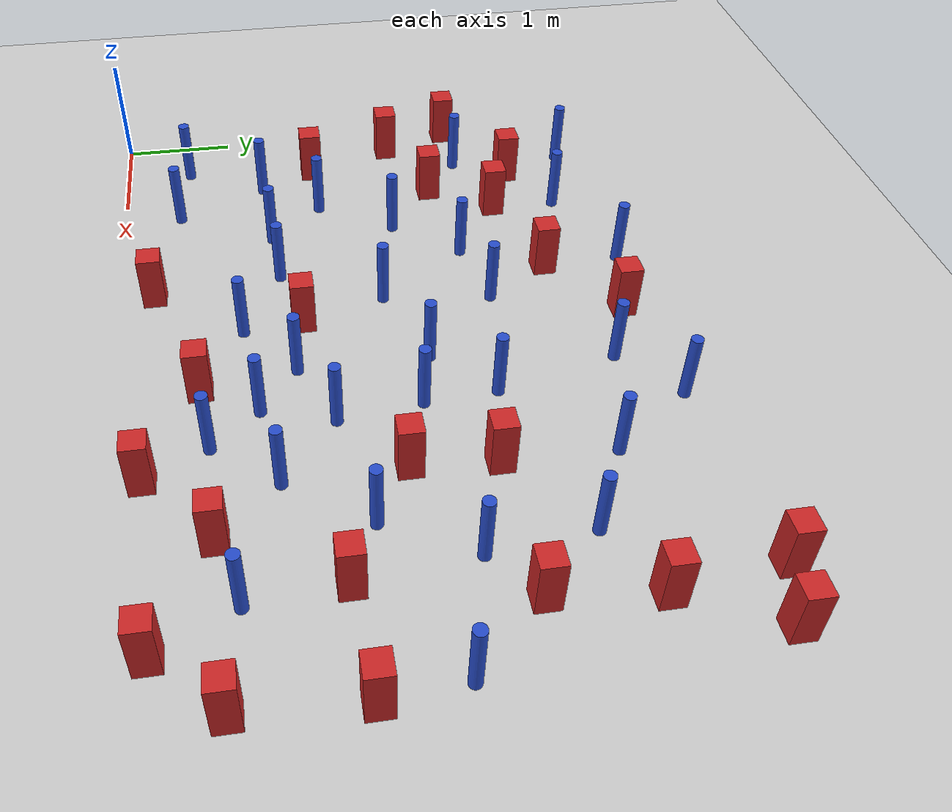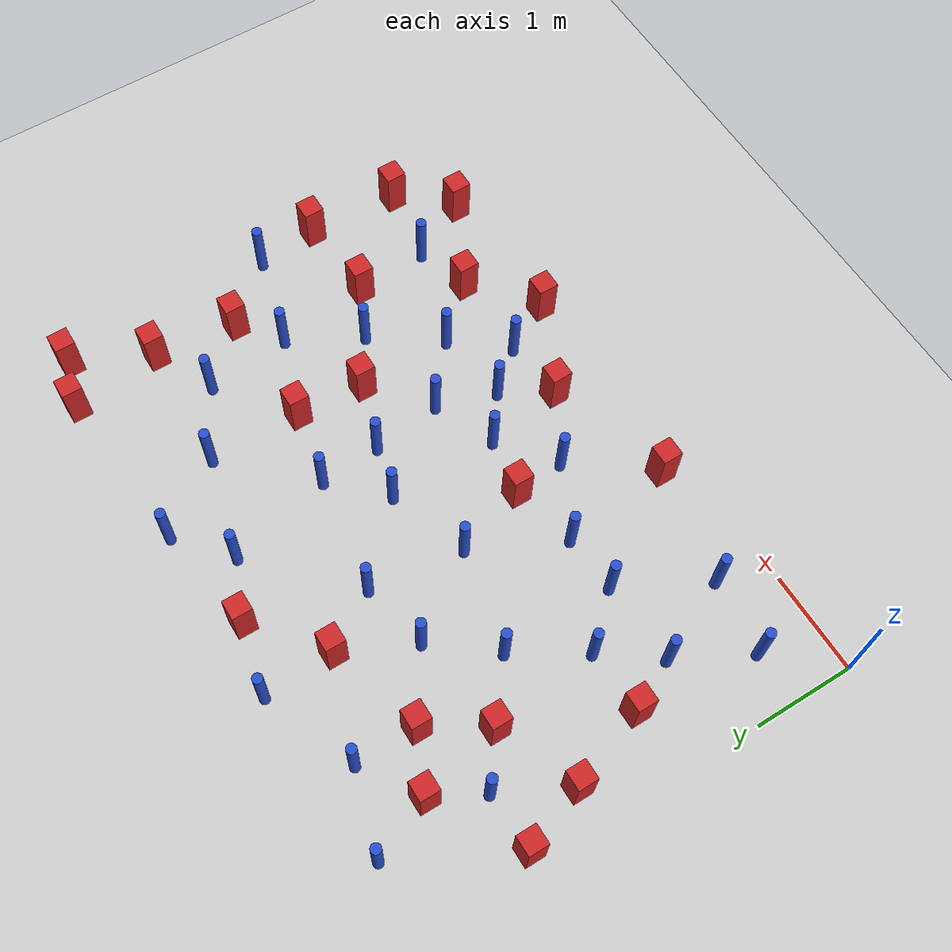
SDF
<sdf version="1.6">
 <world name="default">
  <model name="ground_plane">
   <static>1</static>
   <link name="link">
    <collision name="collision">
     <geometry><plane><normal>0 0 1</normal><size>100 100</size></plane></geometry>
     <surface><friction><ode><mu>100</mu><mu2>50</mu2></ode></friction></surface>
    </collision>
    <visual name="visual">
     <cast_shadows>0</cast_shadows>
     <geometry><plane><normal>0 0 1</normal><size>100 100</size></plane></geometry>
     <material>
      <ambient>1.0 1.0 1.0 1.0</ambient>
      <diffuse>0.8 0.8 0.8 1.0</diffuse>
      <specular>0.01 0.01 0.01 1.000000</specular>
     </material>
    </visual>
   </link>
  </model>
  <model name="square_post_obstacle9">
   <static>true</static>
   <pose>1.16110628064 2.9553017681 8.22691968438e-08 7.2212513382e-06 -7.54495500217e-07 2.29674213826e-05</pose>
   <link name="link">
    <pose>0 0 0.25 0 -0 0</pose>
    <inertial>
     <mass>100</mass>
     <inertia>
      <ixx>0.166667</ixx>
      <ixy>0</ixy>
      <ixz>0</ixz>
      <iyy>0.166667</iyy>
      <iyz>0</iyz>
      <izz>0.166667</izz>
     </inertia>
    </inertial>
    <collision name="collision"><geometry><box><size>.2 .2 .5</size></box></geometry></collision>
    <visual name="visual">
     <geometry><box><size>.2 .2 .5</size></box></geometry>
     <material>
      <script><name>Gazebo/Red</name><uri>file://media/materials/scripts/gazebo.material</uri></script>
     </material>
    </visual>
   </link>
  </model>
  <model name="pole_obstacle14">
   <static>true</static>
   <pose>3.7210992263 4.09337161463 2.88873142074e-08 -9.90536689859e-09 4.60219948989e-07 -1.20965994961e-07</pose>
   <link name="link">
    <pose>0 0 0.3 0 -0 0</pose>
    <inertial>
     <mass>1</mass>
     <inertia><ixx>0.145833</ixx><ixy>0</ixy><ixz>0</ixz><iyy>0.145833</iyy><iyz>0</iyz><izz>0.125</izz></inertia>
    </inertial>
    <collision name="collision">
     <geometry><cylinder><radius>0.05</radius><length>.6</length></cylinder></geometry>
    </collision>
    <visual name="visual">
     <geometry><cylinder><radius>0.05</radius><length>.6</length></cylinder></geometry>
     <material>
      <script><name>Gazebo/Blue</name><uri>file://media/materials/scripts/gazebo.material</uri></script>
     </material>
    </visual>
   </link>
  </model>
  <model name="pole_obstacle16">
   <static>true</static>
   <pose>1.26051647245 0.527565927679 2.88873142074e-08 -9.90536689799e-09 4.6021994899e-07 -1.20965994959e-07</pose>
   <link name="link">
    <pose>0 0 0.3 0 -0 0</pose>
    <inertial>
     <mass>1</mass>
     <inertia><ixx>0.145833</ixx><ixy>0</ixy><ixz>0</ixz><iyy>0.145833</iyy><iyz>0</iyz><izz>0.125</izz></inertia>
    </inertial>
    <collision name="collision">
     <geometry><cylinder><radius>0.05</radius><length>.6</length></cylinder></geometry>
    </collision>
    <visual name="visual">
     <geometry><cylinder><radius>0.05</radius><length>.6</length></cylinder></geometry>
     <material>
      <script><name>Gazebo/Blue</name><uri>file://media/materials/scripts/gazebo.material</uri></script>
     </material>
    </visual>
   </link>
  </model>
  <model name="square_post_obstacle28">
   <static>true</static>
   <pose>5.91532520472 2.93614395454 8.22691968438e-08 7.2212513382e-06 -7.54495500217e-07 2.29674213826e-05</pose>
   <link name="link">
    <pose>0 0 0.25 0 -0 0</pose>
    <inertial>
     <mass>100</mass>
     <inertia>
      <ixx>0.166667</ixx>
      <ixy>0</ixy>
      <ixz>0</ixz>
      <iyy>0.166667</iyy>
      <iyz>0</iyz>
      <izz>0.166667</izz>
     </inertia>
    </inertial>
    <collision name="collision"><geometry><box><size>.2 .2 .5</size></box></geometry></collision>
    <visual name="visual">
     <geometry><box><size>.2 .2 .5</size></box></geometry>
     <material>
      <script><name>Gazebo/Red</name><uri>file://media/materials/scripts/gazebo.material</uri></script>
     </material>
    </visual>
   </link>
  </model>
  <model name="pole_obstacle32">
   <static>true</static>
   <pose>5.68504313919 0.93656754136 2.88873142074e-08 -9.90536689837e-09 4.60219948989e-07 -1.2096599496e-07</pose>
   <link name="link">
    <pose>0 0 0.3 0 -0 0</pose>
    <inertial>
     <mass>1</mass>
     <inertia><ixx>0.145833</ixx><ixy>0</ixy><ixz>0</ixz><iyy>0.145833</iyy><iyz>0</iyz><izz>0.125</izz></inertia>
    </inertial>
    <collision name="collision">
     <geometry><cylinder><radius>0.05</radius><length>.6</length></cylinder></geometry>
    </collision>
    <visual name="visual">
     <geometry><cylinder><radius>0.05</radius><length>.6</length></cylinder></geometry>
     <material>
      <script><name>Gazebo/Blue</name><uri>file://media/materials/scripts/gazebo.material</uri></script>
     </material>
    </visual>
   </link>
  </model>
  <model name="pole_obstacle33">
   <static>true</static>
   <pose>2.98056145517 1.05873726603 2.88873142074e-08 -9.90536689395e-09 4.60219949e-07 -1.20965994953e-07</pose>
   <link name="link">
    <pose>0 0 0.3 0 -0 0</pose>
    <inertial>
     <mass>1</mass>
     <inertia><ixx>0.145833</ixx><ixy>0</ixy><ixz>0</ixz><iyy>0.145833</iyy><iyz>0</iyz><izz>0.125</izz></inertia>
    </inertial>
    <collision name="collision">
     <geometry><cylinder><radius>0.05</radius><length>.6</length></cylinder></geometry>
    </collision>
    <visual name="visual">
     <geometry><cylinder><radius>0.05</radius><length>.6</length></cylinder></geometry>
     <material>
      <script><name>Gazebo/Blue</name><uri>file://media/materials/scripts/gazebo.material</uri></script>
     </material>
    </visual>
   </link>
  </model>
  <model name="pole_obstacle38">
   <static>true</static>
   <pose>1.51372314001 4.13947386853 2.88873142074e-08 -9.90536689852e-09 4.60219948989e-07 -1.2096599496e-07</pose>
   <link name="link">
    <pose>0 0 0.3 0 -0 0</pose>
    <inertial>
     <mass>1</mass>
     <inertia><ixx>0.145833</ixx><ixy>0</ixy><ixz>0</ixz><iyy>0.145833</iyy><iyz>0</iyz><izz>0.125</izz></inertia>
    </inertial>
    <collision name="collision">
     <geometry><cylinder><radius>0.05</radius><length>.6</length></cylinder></geometry>
    </collision>
    <visual name="visual">
     <geometry><cylinder><radius>0.05</radius><length>.6</length></cylinder></geometry>
     <material>
      <script><name>Gazebo/Blue</name><uri>file://media/materials/scripts/gazebo.material</uri></script>
     </material>
    </visual>
   </link>
  </model>
  <model name="pole_obstacle40">
   <static>true</static>
   <pose>4.26444933964 0.75125248442 2.88873142074e-08 -9.90536689837e-09 4.60219948989e-07 -1.2096599496e-07</pose>
   <link name="link">
    <pose>0 0 0.3 0 -0 0</pose>
    <inertial>
     <mass>1</mass>
     <inertia><ixx>0.145833</ixx><ixy>0</ixy><ixz>0</ixz><iyy>0.145833</iyy><iyz>0</iyz><izz>0.125</izz></inertia>
    </inertial>
    <collision name="collision">
     <geometry><cylinder><radius>0.05</radius><length>.6</length></cylinder></geometry>
    </collision>
    <visual name="visual">
     <geometry><cylinder><radius>0.05</radius><length>.6</length></cylinder></geometry>
     <material>
      <script><name>Gazebo/Blue</name><uri>file://media/materials/scripts/gazebo.material</uri></script>
     </material>
    </visual>
   </link>
  </model>
  <model name="square_post_obstacle47">
   <static>true</static>
   <pose>6.37543124654 4.50346402415 8.22691968438e-08 7.2212513382e-06 -7.54495500217e-07 2.29674213826e-05</pose>
   <link name="link">
    <pose>0 0 0.25 0 -0 0</pose>
    <inertial>
     <mass>100</mass>
     <inertia>
      <ixx>0.166667</ixx>
      <ixy>0</ixy>
      <ixz>0</ixz>
      <iyy>0.166667</iyy>
      <iyz>0</iyz>
      <izz>0.166667</izz>
     </inertia>
    </inertial>
    <collision name="collision"><geometry><box><size>.2 .2 .5</size></box></geometry></collision>
    <visual name="visual">
     <geometry><box><size>.2 .2 .5</size></box></geometry>
     <material>
      <script><name>Gazebo/Red</name><uri>file://media/materials/scripts/gazebo.material</uri></script>
     </material>
    </visual>
   </link>
  </model>
  <model name="pole_obstacle46">
   <static>true</static>
   <pose>1.27891621769 1.86001206398 2.88873142074e-08 -9.90536689672e-09 4.60219948993e-07 -1.20965994959e-07</pose>
   <link name="link">
    <pose>0 0 0.3 0 -0 0</pose>
    <inertial>
     <mass>1</mass>
     <inertia><ixx>0.145833</ixx><ixy>0</ixy><ixz>0</ixz><iyy>0.145833</iyy><iyz>0</iyz><izz>0.125</izz></inertia>
    </inertial>
    <collision name="collision">
     <geometry><cylinder><radius>0.05</radius><length>.6</length></cylinder></geometry>
    </collision>
    <visual name="visual">
     <geometry><cylinder><radius>0.05</radius><length>.6</length></cylinder></geometry>
     <material>
      <script><name>Gazebo/Blue</name><uri>file://media/materials/scripts/gazebo.material</uri></script>
     </material>
    </visual>
   </link>
  </model>
  <model name="pole_obstacle48">
   <static>true</static>
   <pose>4.72306061246 3.82454696116 2.88873142074e-08 -9.90536690245e-09 4.6021994898e-07 -1.20965994966e-07</pose>
   <link name="link">
    <pose>0 0 0.3 0 -0 0</pose>
    <inertial>
     <mass>1</mass>
     <inertia><ixx>0.145833</ixx><ixy>0</ixy><ixz>0</ixz><iyy>0.145833</iyy><iyz>0</iyz><izz>0.125</izz></inertia>
    </inertial>
    <collision name="collision">
     <geometry><cylinder><radius>0.05</radius><length>.6</length></cylinder></geometry>
    </collision>
    <visual name="visual">
     <geometry><cylinder><radius>0.05</radius><length>.6</length></cylinder></geometry>
     <material>
      <script><name>Gazebo/Blue</name><uri>file://media/materials/scripts/gazebo.material</uri></script>
     </material>
    </visual>
   </link>
  </model>
  <model name="square_post_obstacle50">
   <static>true</static>
   <pose>3.14208143432 4.34104472338 8.22691968438e-08 7.2212513382e-06 -7.54495500217e-07 2.29674213826e-05</pose>
   <link name="link">
    <pose>0 0 0.25 0 -0 0</pose>
    <inertial>
     <mass>100</mass>
     <inertia>
      <ixx>0.166667</ixx>
      <ixy>0</ixy>
      <ixz>0</ixz>
      <iyy>0.166667</iyy>
      <iyz>0</iyz>
      <izz>0.166667</izz>
     </inertia>
    </inertial>
    <collision name="collision"><geometry><box><size>.2 .2 .5</size></box></geometry></collision>
    <visual name="visual">
     <geometry><box><size>.2 .2 .5</size></box></geometry>
     <material>
      <script><name>Gazebo/Red</name><uri>file://media/materials/scripts/gazebo.material</uri></script>
     </material>
    </visual>
   </link>
  </model>
  <model name="pole_obstacle58">
   <static>true</static>
   <pose>6.43571662382 2.35849925856 2.88873142074e-08 -9.90536690245e-09 4.6021994898e-07 -1.20965994966e-07</pose>
   <link name="link">
    <pose>0 0 0.3 0 -0 0</pose>
    <inertial>
     <mass>1</mass>
     <inertia><ixx>0.145833</ixx><ixy>0</ixy><ixz>0</ixz><iyy>0.145833</iyy><iyz>0</iyz><izz>0.125</izz></inertia>
    </inertial>
    <collision name="collision">
     <geometry><cylinder><radius>0.05</radius><length>.6</length></cylinder></geometry>
    </collision>
    <visual name="visual">
     <geometry><cylinder><radius>0.05</radius><length>.6</length></cylinder></geometry>
     <material>
      <script><name>Gazebo/Blue</name><uri>file://media/materials/scripts/gazebo.material</uri></script>
     </material>
    </visual>
   </link>
  </model>
  <model name="pole_obstacle60">
   <static>true</static>
   <pose>4.11143067751 1.73746155947 2.88873142074e-08 -9.90536689445e-09 4.60219948999e-07 -1.20965994956e-07</pose>
   <link name="link">
    <pose>0 0 0.3 0 -0 0</pose>
    <inertial>
     <mass>1</mass>
     <inertia><ixx>0.145833</ixx><ixy>0</ixy><ixz>0</ixz><iyy>0.145833</iyy><iyz>0</iyz><izz>0.125</izz></inertia>
    </inertial>
    <collision name="collision">
     <geometry><cylinder><radius>0.05</radius><length>.6</length></cylinder></geometry>
    </collision>
    <visual name="visual">
     <geometry><cylinder><radius>0.05</radius><length>.6</length></cylinder></geometry>
     <material>
      <script><name>Gazebo/Blue</name><uri>file://media/materials/scripts/gazebo.material</uri></script>
     </material>
    </visual>
   </link>
  </model>
  <model name="pole_obstacle71">
   <static>true</static>
   <pose>5.42111396061 3.46130239767 2.88873142074e-08 -9.90536690245e-09 4.6021994898e-07 -1.20965994966e-07</pose>
   <link name="link">
    <pose>0 0 0.3 0 -0 0</pose>
    <inertial>
     <mass>1</mass>
     <inertia><ixx>0.145833</ixx><ixy>0</ixy><ixz>0</ixz><iyy>0.145833</iyy><iyz>0</iyz><izz>0.125</izz></inertia>
    </inertial>
    <collision name="collision">
     <geometry><cylinder><radius>0.05</radius><length>.6</length></cylinder></geometry>
    </collision>
    <visual name="visual">
     <geometry><cylinder><radius>0.05</radius><length>.6</length></cylinder></geometry>
     <material>
      <script><name>Gazebo/Blue</name><uri>file://media/materials/scripts/gazebo.material</uri></script>
     </material>
    </visual>
   </link>
  </model>
  <model name="pole_obstacle87">
   <static>true</static>
   <pose>5.13674113905 1.9140734869 2.88873142074e-08 -9.90536689445e-09 4.60219948999e-07 -1.20965994956e-07</pose>
   <link name="link">
    <pose>0 0 0.3 0 -0 0</pose>
    <inertial>
     <mass>1</mass>
     <inertia><ixx>0.145833</ixx><ixy>0</ixy><ixz>0</ixz><iyy>0.145833</iyy><iyz>0</iyz><izz>0.125</izz></inertia>
    </inertial>
    <collision name="collision">
     <geometry><cylinder><radius>0.05</radius><length>.6</length></cylinder></geometry>
    </collision>
    <visual name="visual">
     <geometry><cylinder><radius>0.05</radius><length>.6</length></cylinder></geometry>
     <material>
      <script><name>Gazebo/Blue</name><uri>file://media/materials/scripts/gazebo.material</uri></script>
     </material>
    </visual>
   </link>
  </model>
  <model name="pole_obstacle88">
   <static>true</static>
   <pose>3.50589965042 1.47561671259 2.88873142074e-08 -9.90536689395e-09 4.60219949e-07 -1.20965994953e-07</pose>
   <link name="link">
    <pose>0 0 0.3 0 -0 0</pose>
    <inertial>
     <mass>1</mass>
     <inertia><ixx>0.145833</ixx><ixy>0</ixy><ixz>0</ixz><iyy>0.145833</iyy><iyz>0</iyz><izz>0.125</izz></inertia>
    </inertial>
    <collision name="collision">
     <geometry><cylinder><radius>0.05</radius><length>.6</length></cylinder></geometry>
    </collision>
    <visual name="visual">
     <geometry><cylinder><radius>0.05</radius><length>.6</length></cylinder></geometry>
     <material>
      <script><name>Gazebo/Blue</name><uri>file://media/materials/scripts/gazebo.material</uri></script>
     </material>
    </visual>
   </link>
  </model>
  <model name="square_post_obstacle88">
   <static>true</static>
   <pose>4.66693882614 2.22200164842 8.22691968438e-08 7.2212513382e-06 -7.54495500217e-07 2.29674213826e-05</pose>
   <link name="link">
    <pose>0 0 0.25 0 -0 0</pose>
    <inertial>
     <mass>100</mass>
     <inertia>
      <ixx>0.166667</ixx>
      <ixy>0</ixy>
      <ixz>0</ixz>
      <iyy>0.166667</iyy>
      <iyz>0</iyz>
      <izz>0.166667</izz>
     </inertia>
    </inertial>
    <collision name="collision"><geometry><box><size>.2 .2 .5</size></box></geometry></collision>
    <visual name="visual">
     <geometry><box><size>.2 .2 .5</size></box></geometry>
     <material>
      <script><name>Gazebo/Red</name><uri>file://media/materials/scripts/gazebo.material</uri></script>
     </material>
    </visual>
   </link>
  </model>
  <model name="pole_obstacle101">
   <static>true</static>
   <pose>2.28250194749 1.41724188846 2.88873142074e-08 -9.90536689395e-09 4.60219949e-07 -1.20965994953e-07</pose>
   <link name="link">
    <pose>0 0 0.3 0 -0 0</pose>
    <inertial>
     <mass>1</mass>
     <inertia><ixx>0.145833</ixx><ixy>0</ixy><ixz>0</ixz><iyy>0.145833</iyy><iyz>0</iyz><izz>0.125</izz></inertia>
    </inertial>
    <collision name="collision">
     <geometry><cylinder><radius>0.05</radius><length>.6</length></cylinder></geometry>
    </collision>
    <visual name="visual">
     <geometry><cylinder><radius>0.05</radius><length>.6</length></cylinder></geometry>
     <material>
      <script><name>Gazebo/Blue</name><uri>file://media/materials/scripts/gazebo.material</uri></script>
     </material>
    </visual>
   </link>
  </model>
  <model name="square_post_obstacle92">
   <static>true</static>
   <pose>3.64492977436 0.688854065071 8.22691968438e-08 7.2212513382e-06 -7.54495500217e-07 2.29674213826e-05</pose>
   <link name="link">
    <pose>0 0 0.25 0 -0 0</pose>
    <inertial>
     <mass>100</mass>
     <inertia>
      <ixx>0.166667</ixx>
      <ixy>0</ixy>
      <ixz>0</ixz>
      <iyy>0.166667</iyy>
      <iyz>0</iyz>
      <izz>0.166667</izz>
     </inertia>
    </inertial>
    <collision name="collision"><geometry><box><size>.2 .2 .5</size></box></geometry></collision>
    <visual name="visual">
     <geometry><box><size>.2 .2 .5</size></box></geometry>
     <material>
      <script><name>Gazebo/Red</name><uri>file://media/materials/scripts/gazebo.material</uri></script>
     </material>
    </visual>
   </link>
  </model>
  <model name="square_post_obstacle93">
   <static>true</static>
   <pose>6.01287112447 3.75818676846 8.22691968438e-08 7.2212513382e-06 -7.54495500217e-07 2.29674213826e-05</pose>
   <link name="link">
    <pose>0 0 0.25 0 -0 0</pose>
    <inertial>
     <mass>100</mass>
     <inertia>
      <ixx>0.166667</ixx>
      <ixy>0</ixy>
      <ixz>0</ixz>
      <iyy>0.166667</iyy>
      <iyz>0</iyz>
      <izz>0.166667</izz>
     </inertia>
    </inertial>
    <collision name="collision"><geometry><box><size>.2 .2 .5</size></box></geometry></collision>
    <visual name="visual">
     <geometry><box><size>.2 .2 .5</size></box></geometry>
     <material>
      <script><name>Gazebo/Red</name><uri>file://media/materials/scripts/gazebo.material</uri></script>
     </material>
    </visual>
   </link>
  </model>
  <model name="pole_obstacle107">
   <static>true</static>
   <pose>5.5119467947 2.61350173278 2.88873142074e-08 -9.90536690245e-09 4.6021994898e-07 -1.20965994966e-07</pose>
   <link name="link">
    <pose>0 0 0.3 0 -0 0</pose>
    <inertial>
     <mass>1</mass>
     <inertia><ixx>0.145833</ixx><ixy>0</ixy><ixz>0</ixz><iyy>0.145833</iyy><iyz>0</iyz><izz>0.125</izz></inertia>
    </inertial>
    <collision name="collision">
     <geometry><cylinder><radius>0.05</radius><length>.6</length></cylinder></geometry>
    </collision>
    <visual name="visual">
     <geometry><cylinder><radius>0.05</radius><length>.6</length></cylinder></geometry>
     <material>
      <script><name>Gazebo/Blue</name><uri>file://media/materials/scripts/gazebo.material</uri></script>
     </material>
    </visual>
   </link>
  </model>
  <model name="square_post_obstacle95">
   <static>true</static>
   <pose>1.51442593805 3.52554010863 8.22691968438e-08 7.2212513382e-06 -7.54495500217e-07 2.29674213826e-05</pose>
   <link name="link">
    <pose>0 0 0.25 0 -0 0</pose>
    <inertial>
     <mass>100</mass>
     <inertia>
      <ixx>0.166667</ixx>
      <ixy>0</ixy>
      <ixz>0</ixz>
      <iyy>0.166667</iyy>
      <iyz>0</iyz>
      <izz>0.166667</izz>
     </inertia>
    </inertial>
    <collision name="collision"><geometry><box><size>.2 .2 .5</size></box></geometry></collision>
    <visual name="visual">
     <geometry><box><size>.2 .2 .5</size></box></geometry>
     <material>
      <script><name>Gazebo/Red</name><uri>file://media/materials/scripts/gazebo.material</uri></script>
     </material>
    </visual>
   </link>
  </model>
  <model name="pole_obstacle112">
   <static>true</static>
   <pose>3.50345190609 2.57336743294 2.88873142074e-08 -9.90536690232e-09 4.6021994898e-07 -1.20965994968e-07</pose>
   <link name="link">
    <pose>0 0 0.3 0 -0 0</pose>
    <inertial>
     <mass>1</mass>
     <inertia><ixx>0.145833</ixx><ixy>0</ixy><ixz>0</ixz><iyy>0.145833</iyy><iyz>0</iyz><izz>0.125</izz></inertia>
    </inertial>
    <collision name="collision">
     <geometry><cylinder><radius>0.05</radius><length>.6</length></cylinder></geometry>
    </collision>
    <visual name="visual">
     <geometry><cylinder><radius>0.05</radius><length>.6</length></cylinder></geometry>
     <material>
      <script><name>Gazebo/Blue</name><uri>file://media/materials/scripts/gazebo.material</uri></script>
     </material>
    </visual>
   </link>
  </model>
  <model name="pole_obstacle116">
   <static>true</static>
   <pose>2.14745655065 3.0934236211 2.88873142074e-08 -9.90536690232e-09 4.6021994898e-07 -1.20965994968e-07</pose>
   <link name="link">
    <pose>0 0 0.3 0 -0 0</pose>
    <inertial>
     <mass>1</mass>
     <inertia><ixx>0.145833</ixx><ixy>0</ixy><ixz>0</ixz><iyy>0.145833</iyy><iyz>0</iyz><izz>0.125</izz></inertia>
    </inertial>
    <collision name="collision">
     <geometry><cylinder><radius>0.05</radius><length>.6</length></cylinder></geometry>
    </collision>
    <visual name="visual">
     <geometry><cylinder><radius>0.05</radius><length>.6</length></cylinder></geometry>
     <material>
      <script><name>Gazebo/Blue</name><uri>file://media/materials/scripts/gazebo.material</uri></script>
     </material>
    </visual>
   </link>
  </model>
  <model name="pole_obstacle117">
   <static>true</static>
   <pose>0.519399470088 0.618410686957 2.88873142074e-08 -9.90536689779e-09 4.60219948991e-07 -1.20965994959e-07</pose>
   <link name="link">
    <pose>0 0 0.3 0 -0 0</pose>
    <inertial>
     <mass>1</mass>
     <inertia><ixx>0.145833</ixx><ixy>0</ixy><ixz>0</ixz><iyy>0.145833</iyy><iyz>0</iyz><izz>0.125</izz></inertia>
    </inertial>
    <collision name="collision">
     <geometry><cylinder><radius>0.05</radius><length>.6</length></cylinder></geometry>
    </collision>
    <visual name="visual">
     <geometry><cylinder><radius>0.05</radius><length>.6</length></cylinder></geometry>
     <material>
      <script><name>Gazebo/Blue</name><uri>file://media/materials/scripts/gazebo.material</uri></script>
     </material>
    </visual>
   </link>
  </model>
  <model name="pole_obstacle118">
   <static>true</static>
   <pose>4.67873014055 1.26521624562 2.88873142074e-08 -9.90536689445e-09 4.60219948999e-07 -1.20965994956e-07</pose>
   <link name="link">
    <pose>0 0 0.3 0 -0 0</pose>
    <inertial>
     <mass>1</mass>
     <inertia><ixx>0.145833</ixx><ixy>0</ixy><ixz>0</ixz><iyy>0.145833</iyy><iyz>0</iyz><izz>0.125</izz></inertia>
    </inertial>
    <collision name="collision">
     <geometry><cylinder><radius>0.05</radius><length>.6</length></cylinder></geometry>
    </collision>
    <visual name="visual">
     <geometry><cylinder><radius>0.05</radius><length>.6</length></cylinder></geometry>
     <material>
      <script><name>Gazebo/Blue</name><uri>file://media/materials/scripts/gazebo.material</uri></script>
     </material>
    </visual>
   </link>
  </model>
  <model name="square_post_obstacle108">
   <static>true</static>
   <pose>4.53244313621 0.255335218436 8.22691968438e-08 7.2212513382e-06 -7.54495500217e-07 2.29674213826e-05</pose>
   <link name="link">
    <pose>0 0 0.25 0 -0 0</pose>
    <inertial>
     <mass>100</mass>
     <inertia>
      <ixx>0.166667</ixx>
      <ixy>0</ixy>
      <ixz>0</ixz>
      <iyy>0.166667</iyy>
      <iyz>0</iyz>
      <izz>0.166667</izz>
     </inertia>
    </inertial>
    <collision name="collision"><geometry><box><size>.2 .2 .5</size></box></geometry></collision>
    <visual name="visual">
     <geometry><box><size>.2 .2 .5</size></box></geometry>
     <material>
      <script><name>Gazebo/Red</name><uri>file://media/materials/scripts/gazebo.material</uri></script>
     </material>
    </visual>
   </link>
  </model>
  <model name="pole_obstacle121">
   <static>true</static>
   <pose>0.888601691946 1.335447823 2.88873142074e-08 -9.90536689855e-09 4.60219948989e-07 -1.20965994962e-07</pose>
   <link name="link">
    <pose>0 0 0.3 0 -0 0</pose>
    <inertial>
     <mass>1</mass>
     <inertia><ixx>0.145833</ixx><ixy>0</ixy><ixz>0</ixz><iyy>0.145833</iyy><iyz>0</iyz><izz>0.125</izz></inertia>
    </inertial>
    <collision name="collision">
     <geometry><cylinder><radius>0.05</radius><length>.6</length></cylinder></geometry>
    </collision>
    <visual name="visual">
     <geometry><cylinder><radius>0.05</radius><length>.6</length></cylinder></geometry>
     <material>
      <script><name>Gazebo/Blue</name><uri>file://media/materials/scripts/gazebo.material</uri></script>
     </material>
    </visual>
   </link>
  </model>
  <model name="pole_obstacle122">
   <static>true</static>
   <pose>2.44029786645 4.5076525986 2.88873142074e-08 -9.90536689859e-09 4.60219948989e-07 -1.20965994961e-07</pose>
   <link name="link">
    <pose>0 0 0.3 0 -0 0</pose>
    <inertial>
     <mass>1</mass>
     <inertia><ixx>0.145833</ixx><ixy>0</ixy><ixz>0</ixz><iyy>0.145833</iyy><iyz>0</iyz><izz>0.125</izz></inertia>
    </inertial>
    <collision name="collision">
     <geometry><cylinder><radius>0.05</radius><length>.6</length></cylinder></geometry>
    </collision>
    <visual name="visual">
     <geometry><cylinder><radius>0.05</radius><length>.6</length></cylinder></geometry>
     <material>
      <script><name>Gazebo/Blue</name><uri>file://media/materials/scripts/gazebo.material</uri></script>
     </material>
    </visual>
   </link>
  </model>
  <model name="pole_obstacle129">
   <static>true</static>
   <pose>1.71175955629 1.38033976075 2.88873142074e-08 -9.90536689672e-09 4.60219948993e-07 -1.20965994959e-07</pose>
   <link name="link">
    <pose>0 0 0.3 0 -0 0</pose>
    <inertial>
     <mass>1</mass>
     <inertia><ixx>0.145833</ixx><ixy>0</ixy><ixz>0</ixz><iyy>0.145833</iyy><iyz>0</iyz><izz>0.125</izz></inertia>
    </inertial>
    <collision name="collision">
     <geometry><cylinder><radius>0.05</radius><length>.6</length></cylinder></geometry>
    </collision>
    <visual name="visual">
     <geometry><cylinder><radius>0.05</radius><length>.6</length></cylinder></geometry>
     <material>
      <script><name>Gazebo/Blue</name><uri>file://media/materials/scripts/gazebo.material</uri></script>
     </material>
    </visual>
   </link>
  </model>
  <model name="pole_obstacle131">
   <static>true</static>
   <pose>3.92928163266 1.15054081225 2.88873142074e-08 -9.90536689395e-09 4.60219949e-07 -1.20965994953e-07</pose>
   <link name="link">
    <pose>0 0 0.3 0 -0 0</pose>
    <inertial>
     <mass>1</mass>
     <inertia><ixx>0.145833</ixx><ixy>0</ixy><ixz>0</ixz><iyy>0.145833</iyy><iyz>0</iyz><izz>0.125</izz></inertia>
    </inertial>
    <collision name="collision">
     <geometry><cylinder><radius>0.05</radius><length>.6</length></cylinder></geometry>
    </collision>
    <visual name="visual">
     <geometry><cylinder><radius>0.05</radius><length>.6</length></cylinder></geometry>
     <material>
      <script><name>Gazebo/Blue</name><uri>file://media/materials/scripts/gazebo.material</uri></script>
     </material>
    </visual>
   </link>
  </model>
  <model name="square_post_obstacle121">
   <static>true</static>
   <pose>0.966792013401 3.77846412072 8.22691968438e-08 7.2212513382e-06 -7.54495500217e-07 2.29674213826e-05</pose>
   <link name="link">
    <pose>0 0 0.25 0 -0 0</pose>
    <inertial>
     <mass>100</mass>
     <inertia>
      <ixx>0.166667</ixx>
      <ixy>0</ixy>
      <ixz>0</ixz>
      <iyy>0.166667</iyy>
      <iyz>0</iyz>
      <izz>0.166667</izz>
     </inertia>
    </inertial>
    <collision name="collision"><geometry><box><size>.2 .2 .5</size></box></geometry></collision>
    <visual name="visual">
     <geometry><box><size>.2 .2 .5</size></box></geometry>
     <material>
      <script><name>Gazebo/Red</name><uri>file://media/materials/scripts/gazebo.material</uri></script>
     </material>
    </visual>
   </link>
  </model>
  <model name="square_post_obstacle130">
   <static>true</static>
   <pose>6.49872833512 1.7402471963 8.22691968438e-08 7.2212513382e-06 -7.54495500217e-07 2.29674213826e-05</pose>
   <link name="link">
    <pose>0 0 0.25 0 -0 0</pose>
    <inertial>
     <mass>100</mass>
     <inertia>
      <ixx>0.166667</ixx>
      <ixy>0</ixy>
      <ixz>0</ixz>
      <iyy>0.166667</iyy>
      <iyz>0</iyz>
      <izz>0.166667</izz>
     </inertia>
    </inertial>
    <collision name="collision"><geometry><box><size>.2 .2 .5</size></box></geometry></collision>
    <visual name="visual">
     <geometry><box><size>.2 .2 .5</size></box></geometry>
     <material>
      <script><name>Gazebo/Red</name><uri>file://media/materials/scripts/gazebo.material</uri></script>
     </material>
    </visual>
   </link>
  </model>
  <model name="square_post_obstacle137">
   <static>true</static>
   <pose>0.370499744934 2.63544826117 8.22691968438e-08 7.2212513382e-06 -7.54495500217e-07 2.29674213826e-05</pose>
   <link name="link">
    <pose>0 0 0.25 0 -0 0</pose>
    <inertial>
     <mass>100</mass>
     <inertia>
      <ixx>0.166667</ixx>
      <ixy>0</ixy>
      <ixz>0</ixz>
      <iyy>0.166667</iyy>
      <iyz>0</iyz>
      <izz>0.166667</izz>
     </inertia>
    </inertial>
    <collision name="collision"><geometry><box><size>.2 .2 .5</size></box></geometry></collision>
    <visual name="visual">
     <geometry><box><size>.2 .2 .5</size></box></geometry>
     <material>
      <script><name>Gazebo/Red</name><uri>file://media/materials/scripts/gazebo.material</uri></script>
     </material>
    </visual>
   </link>
  </model>
  <model name="pole_obstacle156">
   <static>true</static>
   <pose>3.97650896337 3.05219657488 2.88873142074e-08 -9.90536690919e-09 4.60219948964e-07 -1.20965994979e-07</pose>
   <link name="link">
    <pose>0 0 0.3 0 -0 0</pose>
    <inertial>
     <mass>1</mass>
     <inertia><ixx>0.145833</ixx><ixy>0</ixy><ixz>0</ixz><iyy>0.145833</iyy><iyz>0</iyz><izz>0.125</izz></inertia>
    </inertial>
    <collision name="collision">
     <geometry><cylinder><radius>0.05</radius><length>.6</length></cylinder></geometry>
    </collision>
    <visual name="visual">
     <geometry><cylinder><radius>0.05</radius><length>.6</length></cylinder></geometry>
     <material>
      <script><name>Gazebo/Blue</name><uri>file://media/materials/scripts/gazebo.material</uri></script>
     </material>
    </visual>
   </link>
  </model>
  <model name="square_post_obstacle147">
   <static>true</static>
   <pose>2.47532097215 3.79729164051 8.22691968438e-08 7.2212513382e-06 -7.54495500217e-07 2.29674213826e-05</pose>
   <link name="link">
    <pose>0 0 0.25 0 -0 0</pose>
    <inertial>
     <mass>100</mass>
     <inertia>
      <ixx>0.166667</ixx>
      <ixy>0</ixy>
      <ixz>0</ixz>
      <iyy>0.166667</iyy>
      <iyz>0</iyz>
      <izz>0.166667</izz>
     </inertia>
    </inertial>
    <collision name="collision"><geometry><box><size>.2 .2 .5</size></box></geometry></collision>
    <visual name="visual">
     <geometry><box><size>.2 .2 .5</size></box></geometry>
     <material>
      <script><name>Gazebo/Red</name><uri>file://media/materials/scripts/gazebo.material</uri></script>
     </material>
    </visual>
   </link>
  </model>
  <model name="pole_obstacle157">
   <static>true</static>
   <pose>2.70650965963 2.29597997253 2.88873142074e-08 -9.90536690232e-09 4.6021994898e-07 -1.20965994968e-07</pose>
   <link name="link">
    <pose>0 0 0.3 0 -0 0</pose>
    <inertial>
     <mass>1</mass>
     <inertia><ixx>0.145833</ixx><ixy>0</ixy><ixz>0</ixz><iyy>0.145833</iyy><iyz>0</iyz><izz>0.125</izz></inertia>
    </inertial>
    <collision name="collision">
     <geometry><cylinder><radius>0.05</radius><length>.6</length></cylinder></geometry>
    </collision>
    <visual name="visual">
     <geometry><cylinder><radius>0.05</radius><length>.6</length></cylinder></geometry>
     <material>
      <script><name>Gazebo/Blue</name><uri>file://media/materials/scripts/gazebo.material</uri></script>
     </material>
    </visual>
   </link>
  </model>
  <model name="square_post_obstacle152">
   <static>true</static>
   <pose>2.42223060258 0.306113179155 8.22691968438e-08 7.2212513382e-06 -7.54495500217e-07 2.29674213826e-05</pose>
   <link name="link">
    <pose>0 0 0.25 0 -0 0</pose>
    <inertial>
     <mass>100</mass>
     <inertia>
      <ixx>0.166667</ixx>
      <ixy>0</ixy>
      <ixz>0</ixz>
      <iyy>0.166667</iyy>
      <iyz>0</iyz>
      <izz>0.166667</izz>
     </inertia>
    </inertial>
    <collision name="collision"><geometry><box><size>.2 .2 .5</size></box></geometry></collision>
    <visual name="visual">
     <geometry><box><size>.2 .2 .5</size></box></geometry>
     <material>
      <script><name>Gazebo/Red</name><uri>file://media/materials/scripts/gazebo.material</uri></script>
     </material>
    </visual>
   </link>
  </model>
  <model name="square_post_obstacle154">
   <static>true</static>
   <pose>5.99413694972 0.334745210916 8.22691968438e-08 7.2212513382e-06 -7.54495500217e-07 2.29674213826e-05</pose>
   <link name="link">
    <pose>0 0 0.25 0 -0 0</pose>
    <inertial>
     <mass>100</mass>
     <inertia>
      <ixx>0.166667</ixx>
      <ixy>0</ixy>
      <ixz>0</ixz>
      <iyy>0.166667</iyy>
      <iyz>0</iyz>
      <izz>0.166667</izz>
     </inertia>
    </inertial>
    <collision name="collision"><geometry><box><size>.2 .2 .5</size></box></geometry></collision>
    <visual name="visual">
     <geometry><box><size>.2 .2 .5</size></box></geometry>
     <material>
      <script><name>Gazebo/Red</name><uri>file://media/materials/scripts/gazebo.material</uri></script>
     </material>
    </visual>
   </link>
  </model>
  <model name="pole_obstacle163">
   <static>true</static>
   <pose>2.8270842001 3.23622486729 2.88873142074e-08 -9.90536690232e-09 4.6021994898e-07 -1.20965994968e-07</pose>
   <link name="link">
    <pose>0 0 0.3 0 -0 0</pose>
    <inertial>
     <mass>1</mass>
     <inertia><ixx>0.145833</ixx><ixy>0</ixy><ixz>0</ixz><iyy>0.145833</iyy><iyz>0</iyz><izz>0.125</izz></inertia>
    </inertial>
    <collision name="collision">
     <geometry><cylinder><radius>0.05</radius><length>.6</length></cylinder></geometry>
    </collision>
    <visual name="visual">
     <geometry><cylinder><radius>0.05</radius><length>.6</length></cylinder></geometry>
     <material>
      <script><name>Gazebo/Blue</name><uri>file://media/materials/scripts/gazebo.material</uri></script>
     </material>
    </visual>
   </link>
  </model>
  <model name="square_post_obstacle157">
   <static>true</static>
   <pose>5.63666677629 1.67499988149 8.22691968438e-08 7.2212513382e-06 -7.54495500217e-07 2.29674213826e-05</pose>
   <link name="link">
    <pose>0 0 0.25 0 -0 0</pose>
    <inertial>
     <mass>100</mass>
     <inertia>
      <ixx>0.166667</ixx>
      <ixy>0</ixy>
      <ixz>0</ixz>
      <iyy>0.166667</iyy>
      <iyz>0</iyz>
      <izz>0.166667</izz>
     </inertia>
    </inertial>
    <collision name="collision"><geometry><box><size>.2 .2 .5</size></box></geometry></collision>
    <visual name="visual">
     <geometry><box><size>.2 .2 .5</size></box></geometry>
     <material>
      <script><name>Gazebo/Red</name><uri>file://media/materials/scripts/gazebo.material</uri></script>
     </material>
    </visual>
   </link>
  </model>
  <model name="square_post_obstacle158">
   <static>true</static>
   <pose>0.144413254854 3.26817404801 8.22691968438e-08 7.2212513382e-06 -7.54495500217e-07 2.29674213826e-05</pose>
   <link name="link">
    <pose>0 0 0.25 0 -0 0</pose>
    <inertial>
     <mass>100</mass>
     <inertia>
      <ixx>0.166667</ixx>
      <ixy>0</ixy>
      <ixz>0</ixz>
      <iyy>0.166667</iyy>
      <iyz>0</iyz>
      <izz>0.166667</izz>
     </inertia>
    </inertial>
    <collision name="collision"><geometry><box><size>.2 .2 .5</size></box></geometry></collision>
    <visual name="visual">
     <geometry><box><size>.2 .2 .5</size></box></geometry>
     <material>
      <script><name>Gazebo/Red</name><uri>file://media/materials/scripts/gazebo.material</uri></script>
     </material>
    </visual>
   </link>
  </model>
  <model name="pole_obstacle171">
   <static>true</static>
   <pose>0.720763944844 4.37676093387 2.88873142074e-08 -9.90536689661e-09 4.60219948993e-07 -1.20965994957e-07</pose>
   <link name="link">
    <pose>0 0 0.3 0 -0 0</pose>
    <inertial>
     <mass>1</mass>
     <inertia><ixx>0.145833</ixx><ixy>0</ixy><ixz>0</ixz><iyy>0.145833</iyy><iyz>0</iyz><izz>0.125</izz></inertia>
    </inertial>
    <collision name="collision">
     <geometry><cylinder><radius>0.05</radius><length>.6</length></cylinder></geometry>
    </collision>
    <visual name="visual">
     <geometry><cylinder><radius>0.05</radius><length>.6</length></cylinder></geometry>
     <material>
      <script><name>Gazebo/Blue</name><uri>file://media/materials/scripts/gazebo.material</uri></script>
     </material>
    </visual>
   </link>
  </model>
  <model name="square_post_obstacle168">
   <static>true</static>
   <pose>5.89533141273 4.65545685247 8.22691968438e-08 7.2212513382e-06 -7.54495500217e-07 2.29674213826e-05</pose>
   <link name="link">
    <pose>0 0 0.25 0 -0 0</pose>
    <inertial>
     <mass>100</mass>
     <inertia>
      <ixx>0.166667</ixx>
      <ixy>0</ixy>
      <ixz>0</ixz>
      <iyy>0.166667</iyy>
      <iyz>0</iyz>
      <izz>0.166667</izz>
     </inertia>
    </inertial>
    <collision name="collision"><geometry><box><size>.2 .2 .5</size></box></geometry></collision>
    <visual name="visual">
     <geometry><box><size>.2 .2 .5</size></box></geometry>
     <material>
      <script><name>Gazebo/Red</name><uri>file://media/materials/scripts/gazebo.material</uri></script>
     </material>
    </visual>
   </link>
  </model>
  <model name="square_post_obstacle172">
   <static>true</static>
   <pose>2.94213068066 1.57494667683 8.22691968438e-08 7.2212513382e-06 -7.54495500217e-07 2.29674213826e-05</pose>
   <link name="link">
    <pose>0 0 0.25 0 -0 0</pose>
    <inertial>
     <mass>100</mass>
     <inertia>
      <ixx>0.166667</ixx>
      <ixy>0</ixy>
      <ixz>0</ixz>
      <iyy>0.166667</iyy>
      <iyz>0</iyz>
      <izz>0.166667</izz>
     </inertia>
    </inertial>
    <collision name="collision"><geometry><box><size>.2 .2 .5</size></box></geometry></collision>
    <visual name="visual">
     <geometry><box><size>.2 .2 .5</size></box></geometry>
     <material>
      <script><name>Gazebo/Red</name><uri>file://media/materials/scripts/gazebo.material</uri></script>
     </material>
    </visual>
   </link>
  </model>
  <model name="square_post_obstacle177">
   <static>true</static>
   <pose>0.654052220063 1.83843675334 8.22691968438e-08 7.2212513382e-06 -7.54495500217e-07 2.29674213826e-05</pose>
   <link name="link">
    <pose>0 0 0.25 0 -0 0</pose>
    <inertial>
     <mass>100</mass>
     <inertia>
      <ixx>0.166667</ixx>
      <ixy>0</ixy>
      <ixz>0</ixz>
      <iyy>0.166667</iyy>
      <iyz>0</iyz>
      <izz>0.166667</izz>
     </inertia>
    </inertial>
    <collision name="collision"><geometry><box><size>.2 .2 .5</size></box></geometry></collision>
    <visual name="visual">
     <geometry><box><size>.2 .2 .5</size></box></geometry>
     <material>
      <script><name>Gazebo/Red</name><uri>file://media/materials/scripts/gazebo.material</uri></script>
     </material>
    </visual>
   </link>
  </model>
  <model name="square_post_obstacle179">
   <static>true</static>
   <pose>4.71792773778 2.90152955272 8.22691968438e-08 7.2212513382e-06 -7.54495500217e-07 2.29674213826e-05</pose>
   <link name="link">
    <pose>0 0 0.25 0 -0 0</pose>
    <inertial>
     <mass>100</mass>
     <inertia>
      <ixx>0.166667</ixx>
      <ixy>0</ixy>
      <ixz>0</ixz>
      <iyy>0.166667</iyy>
      <iyz>0</iyz>
      <izz>0.166667</izz>
     </inertia>
    </inertial>
    <collision name="collision"><geometry><box><size>.2 .2 .5</size></box></geometry></collision>
    <visual name="visual">
     <geometry><box><size>.2 .2 .5</size></box></geometry>
     <material>
      <script><name>Gazebo/Red</name><uri>file://media/materials/scripts/gazebo.material</uri></script>
     </material>
    </visual>
   </link>
  </model>
  <model name="square_post_obstacle203">
   <static>true</static>
   <pose>6.44686363586 0.821583435934 8.22691968438e-08 7.2212513382e-06 -7.54495500217e-07 2.29674213826e-05</pose>
   <link name="link">
    <pose>0 0 0.25 0 -0 0</pose>
    <inertial>
     <mass>100</mass>
     <inertia>
      <ixx>0.166667</ixx>
      <ixy>0</ixy>
      <ixz>0</ixz>
      <iyy>0.166667</iyy>
      <iyz>0</iyz>
      <izz>0.166667</izz>
     </inertia>
    </inertial>
    <collision name="collision"><geometry><box><size>.2 .2 .5</size></box></geometry></collision>
    <visual name="visual">
     <geometry><box><size>.2 .2 .5</size></box></geometry>
     <material>
      <script><name>Gazebo/Red</name><uri>file://media/materials/scripts/gazebo.material</uri></script>
     </material>
    </visual>
   </link>
  </model>
  <model name="pole_obstacle191">
   <static>true</static>
   <pose>0.710566237853 3.29346792442 2.88873142074e-08 -9.90536689636e-09 4.60219948994e-07 -1.20965994958e-07</pose>
   <link name="link">
    <pose>0 0 0.3 0 -0 0</pose>
    <inertial>
     <mass>1</mass>
     <inertia><ixx>0.145833</ixx><ixy>0</ixy><ixz>0</ixz><iyy>0.145833</iyy><iyz>0</iyz><izz>0.125</izz></inertia>
    </inertial>
    <collision name="collision">
     <geometry><cylinder><radius>0.05</radius><length>.6</length></cylinder></geometry>
    </collision>
    <visual name="visual">
     <geometry><cylinder><radius>0.05</radius><length>.6</length></cylinder></geometry>
     <material>
      <script><name>Gazebo/Blue</name><uri>file://media/materials/scripts/gazebo.material</uri></script>
     </material>
    </visual>
   </link>
  </model>
  <model name="square_post_obstacle204">
   <static>true</static>
   <pose>5.14278329922 0.775270363668 8.22691968438e-08 7.2212513382e-06 -7.54495500217e-07 2.29674213826e-05</pose>
   <link name="link">
    <pose>0 0 0.25 0 -0 0</pose>
    <inertial>
     <mass>100</mass>
     <inertia>
      <ixx>0.166667</ixx>
      <ixy>0</ixy>
      <ixz>0</ixz>
      <iyy>0.166667</iyy>
      <iyz>0</iyz>
      <izz>0.166667</izz>
     </inertia>
    </inertial>
    <collision name="collision"><geometry><box><size>.2 .2 .5</size></box></geometry></collision>
    <visual name="visual">
     <geometry><box><size>.2 .2 .5</size></box></geometry>
     <material>
      <script><name>Gazebo/Red</name><uri>file://media/materials/scripts/gazebo.material</uri></script>
     </material>
    </visual>
   </link>
  </model>
  <model name="pole_obstacle198">
   <static>true</static>
   <pose>4.21921529456 4.52152396207 2.88873142074e-08 -9.90536690842e-09 4.60219948965e-07 -1.20965994976e-07</pose>
   <link name="link">
    <pose>0 0 0.3 0 -0 0</pose>
    <inertial>
     <mass>1</mass>
     <inertia><ixx>0.145833</ixx><ixy>0</ixy><ixz>0</ixz><iyy>0.145833</iyy><iyz>0</iyz><izz>0.125</izz></inertia>
    </inertial>
    <collision name="collision">
     <geometry><cylinder><radius>0.05</radius><length>.6</length></cylinder></geometry>
    </collision>
    <visual name="visual">
     <geometry><cylinder><radius>0.05</radius><length>.6</length></cylinder></geometry>
     <material>
      <script><name>Gazebo/Blue</name><uri>file://media/materials/scripts/gazebo.material</uri></script>
     </material>
    </visual>
   </link>
  </model>
  <model name="pole_obstacle208">
   <static>true</static>
   <pose>4.01954713562 2.4394945798 2.88873142074e-08 -9.90536689988e-09 4.60219948986e-07 -1.20965994963e-07</pose>
   <link name="link">
    <pose>0 0 0.3 0 -0 0</pose>
    <inertial>
     <mass>1</mass>
     <inertia><ixx>0.145833</ixx><ixy>0</ixy><ixz>0</ixz><iyy>0.145833</iyy><iyz>0</iyz><izz>0.125</izz></inertia>
    </inertial>
    <collision name="collision">
     <geometry><cylinder><radius>0.05</radius><length>.6</length></cylinder></geometry>
    </collision>
    <visual name="visual">
     <geometry><cylinder><radius>0.05</radius><length>.6</length></cylinder></geometry>
     <material>
      <script><name>Gazebo/Blue</name><uri>file://media/materials/scripts/gazebo.material</uri></script>
     </material>
    </visual>
   </link>
  </model>
  <model name="pole_obstacle211">
   <static>true</static>
   <pose>1.68677436186 2.52322143945 2.88873142074e-08 -9.90536689791e-09 4.6021994899e-07 -1.20965994959e-07</pose>
   <link name="link">
    <pose>0 0 0.3 0 -0 0</pose>
    <inertial>
     <mass>1</mass>
     <inertia><ixx>0.145833</ixx><ixy>0</ixy><ixz>0</ixz><iyy>0.145833</iyy><iyz>0</iyz><izz>0.125</izz></inertia>
    </inertial>
    <collision name="collision">
     <geometry><cylinder><radius>0.05</radius><length>.6</length></cylinder></geometry>
    </collision>
    <visual name="visual">
     <geometry><cylinder><radius>0.05</radius><length>.6</length></cylinder></geometry>
     <material>
      <script><name>Gazebo/Blue</name><uri>file://media/materials/scripts/gazebo.material</uri></script>
     </material>
    </visual>
   </link>
  </model>
 </world>
</sdf>
